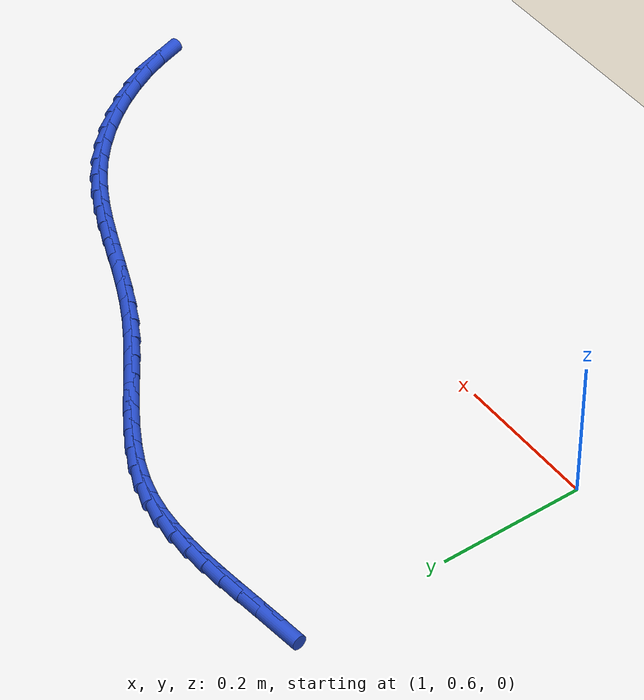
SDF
<sdf version="1.6">
 <world name="default">
  <model name="ground_plane">
   <static>1</static>
   <link name="link">
    <collision name="collision">
     <geometry><plane><normal>0 0 1</normal><size>100 100</size></plane></geometry>
     <surface><friction><ode><mu>100</mu><mu2>50</mu2></ode></friction></surface>
    </collision>
    <visual name="visual">
     <cast_shadows>0</cast_shadows>
     <geometry><plane><normal>0 0 1</normal><size>100 100</size></plane></geometry>
     <material>
      <script><uri>file://media/materials/scripts/gazebo.material</uri><name>Gazebo/WhiteGlow</name></script>
     </material>
    </visual>
   </link>
  </model>
  <model name="line">
   <link name="link_52">
    <pose>1.0295466909963629 1.0197453199006765 0.01 0 1.57 0.0985502799877787</pose>
    <collision name="collision">
     <geometry><cylinder><radius>0.01</radius><length>0.08</length></cylinder></geometry>
    </collision>
    <visual name="visual">
     <material>
      <script><name>Gazebo/Blue</name><uri>file://media/materials/scripts/gazebo.material</uri></script>
     </material>
     <geometry><cylinder><radius>0.01</radius><length>0.08</length></cylinder></geometry>
    </visual>
   </link>
   <link name="link_53">
    <pose>1.0619679361933965 1.022950826880873 0.01 0 1.57 0.10668664544577708</pose>
    <collision name="collision">
     <geometry><cylinder><radius>0.01</radius><length>0.08</length></cylinder></geometry>
    </collision>
    <visual name="visual">
     <material>
      <script><name>Gazebo/Blue</name><uri>file://media/materials/scripts/gazebo.material</uri></script>
     </material>
     <geometry><cylinder><radius>0.01</radius><length>0.08</length></cylinder></geometry>
    </visual>
   </link>
   <link name="link_54">
    <pose>1.0940946537646532 1.0263913820360195 0.01 0 1.57 0.10079699240235727</pose>
    <collision name="collision">
     <geometry><cylinder><radius>0.01</radius><length>0.08</length></cylinder></geometry>
    </collision>
    <visual name="visual">
     <material>
      <script><name>Gazebo/Blue</name><uri>file://media/materials/scripts/gazebo.material</uri></script>
     </material>
     <geometry><cylinder><radius>0.01</radius><length>0.08</length></cylinder></geometry>
    </visual>
   </link>
   <link name="link_55">
    <pose>1.125871012350304 1.0296052350754445 0.01 0 1.57 0.08033001967737259</pose>
    <collision name="collision">
     <geometry><cylinder><radius>0.01</radius><length>0.08</length></cylinder></geometry>
    </collision>
    <visual name="visual">
     <material>
      <script><name>Gazebo/Blue</name><uri>file://media/materials/scripts/gazebo.material</uri></script>
     </material>
     <geometry><cylinder><radius>0.01</radius><length>0.08</length></cylinder></geometry>
    </visual>
   </link>
   <link name="link_56">
    <pose>1.1572411805905212 1.0321306357084772 0.01 0 1.57 0.04446373219891118</pose>
    <collision name="collision">
     <geometry><cylinder><radius>0.01</radius><length>0.08</length></cylinder></geometry>
    </collision>
    <visual name="visual">
     <material>
      <script><name>Gazebo/Blue</name><uri>file://media/materials/scripts/gazebo.material</uri></script>
     </material>
     <geometry><cylinder><radius>0.01</radius><length>0.08</length></cylinder></geometry>
    </visual>
   </link>
   <link name="link_57">
    <pose>1.1881493271254748 1.0335058336444454 0.01 0 1.57 -0.007790324976418928</pose>
    <collision name="collision">
     <geometry><cylinder><radius>0.01</radius><length>0.08</length></cylinder></geometry>
    </collision>
    <visual name="visual">
     <material>
      <script><name>Gazebo/Blue</name><uri>file://media/materials/scripts/gazebo.material</uri></script>
     </material>
     <geometry><cylinder><radius>0.01</radius><length>0.08</length></cylinder></geometry>
    </visual>
   </link>
   <link name="link_58">
    <pose>1.2185396205953376 1.0332690785926784 0.01 0 1.57 -0.07733443137409492</pose>
    <collision name="collision">
     <geometry><cylinder><radius>0.01</radius><length>0.08</length></cylinder></geometry>
    </collision>
    <visual name="visual">
     <material>
      <script><name>Gazebo/Blue</name><uri>file://media/materials/scripts/gazebo.material</uri></script>
     </material>
     <geometry><cylinder><radius>0.01</radius><length>0.08</length></cylinder></geometry>
    </visual>
   </link>
   <link name="link_59">
    <pose>1.24835622964028 1.0309586202625043 0.01 0 1.57 -0.16452844738512007</pose>
    <collision name="collision">
     <geometry><cylinder><radius>0.01</radius><length>0.08</length></cylinder></geometry>
    </collision>
    <visual name="visual">
     <material>
      <script><name>Gazebo/Blue</name><uri>file://media/materials/scripts/gazebo.material</uri></script>
     </material>
     <geometry><cylinder><radius>0.01</radius><length>0.08</length></cylinder></geometry>
    </visual>
   </link>
   <link name="link_60">
    <pose>1.2775433229004738 1.0261127083632515 0.01 0 1.57 -0.267700751961531</pose>
    <collision name="collision">
     <geometry><cylinder><radius>0.01</radius><length>0.08</length></cylinder></geometry>
    </collision>
    <visual name="visual">
     <material>
      <script><name>Gazebo/Blue</name><uri>file://media/materials/scripts/gazebo.material</uri></script>
     </material>
     <geometry><cylinder><radius>0.01</radius><length>0.08</length></cylinder></geometry>
    </visual>
   </link>
   <link name="link_61">
    <pose>1.3060499091277775 1.0182937979865905 0.01 0 1.57 -0.3681553916015632</pose>
    <collision name="collision">
     <geometry><cylinder><radius>0.01</radius><length>0.08</length></cylinder></geometry>
    </collision>
    <visual name="visual">
     <material>
      <script><name>Gazebo/Blue</name><uri>file://media/materials/scripts/gazebo.material</uri></script>
     </material>
     <geometry><cylinder><radius>0.01</radius><length>0.08</length></cylinder></geometry>
    </visual>
   </link>
   <link name="link_62">
    <pose>1.3339206801874217 1.0075428551537553 0.01 0 1.57 -0.449506511914954</pose>
    <collision name="collision">
     <geometry><cylinder><radius>0.01</radius><length>0.08</length></cylinder></geometry>
    </collision>
    <visual name="visual">
     <material>
      <script><name>Gazebo/Blue</name><uri>file://media/materials/scripts/gazebo.material</uri></script>
     </material>
     <geometry><cylinder><radius>0.01</radius><length>0.08</length></cylinder></geometry>
    </visual>
   </link>
   <link name="link_63">
    <pose>1.3612880532535867 0.9943395598622773 0.01 0 1.57 -0.5116138458323856</pose>
    <collision name="collision">
     <geometry><cylinder><radius>0.01</radius><length>0.08</length></cylinder></geometry>
    </collision>
    <visual name="visual">
     <material>
      <script><name>Gazebo/Blue</name><uri>file://media/materials/scripts/gazebo.material</uri></script>
     </material>
     <geometry><cylinder><radius>0.01</radius><length>0.08</length></cylinder></geometry>
    </visual>
   </link>
   <link name="link_64">
    <pose>1.3882876902885875 0.9791798192842922 0.01 0 1.57 -0.5556536244174888</pose>
    <collision name="collision">
     <geometry><cylinder><radius>0.01</radius><length>0.08</length></cylinder></geometry>
    </collision>
    <visual name="visual">
     <material>
      <script><name>Gazebo/Blue</name><uri>file://media/materials/scripts/gazebo.material</uri></script>
     </material>
     <geometry><cylinder><radius>0.01</radius><length>0.08</length></cylinder></geometry>
    </visual>
   </link>
   <link name="link_65">
    <pose>1.4150552532547411 0.9625595405919359 0.01 0 1.57 -0.5829014485841069</pose>
    <collision name="collision">
     <geometry><cylinder><radius>0.01</radius><length>0.08</length></cylinder></geometry>
    </collision>
    <visual name="visual">
     <material>
      <script><name>Gazebo/Blue</name><uri>file://media/materials/scripts/gazebo.material</uri></script>
     </material>
     <geometry><cylinder><radius>0.01</radius><length>0.08</length></cylinder></geometry>
    </visual>
   </link>
   <link name="link_66">
    <pose>1.4417264041143634 0.9449746309573438 0.01 0 1.57 -0.5943695902177217</pose>
    <collision name="collision">
     <geometry><cylinder><radius>0.01</radius><length>0.08</length></cylinder></geometry>
    </collision>
    <visual name="visual">
     <material>
      <script><name>Gazebo/Blue</name><uri>file://media/materials/scripts/gazebo.material</uri></script>
     </material>
     <geometry><cylinder><radius>0.01</radius><length>0.08</length></cylinder></geometry>
    </visual>
   </link>
   <link name="link_67">
    <pose>1.46843680482977 0.9269209975526518 0.01 0 1.57 -0.5906478549886461</pose>
    <collision name="collision">
     <geometry><cylinder><radius>0.01</radius><length>0.08</length></cylinder></geometry>
    </collision>
    <visual name="visual">
     <material>
      <script><name>Gazebo/Blue</name><uri>file://media/materials/scripts/gazebo.material</uri></script>
     </material>
     <geometry><cylinder><radius>0.01</radius><length>0.08</length></cylinder></geometry>
    </visual>
   </link>
   <link name="link_68">
    <pose>1.4953221173632785 0.9088945475499962 0.01 0 1.57 -0.571865195946741</pose>
    <collision name="collision">
     <geometry><cylinder><radius>0.01</radius><length>0.08</length></cylinder></geometry>
    </collision>
    <visual name="visual">
     <material>
      <script><name>Gazebo/Blue</name><uri>file://media/materials/scripts/gazebo.material</uri></script>
     </material>
     <geometry><cylinder><radius>0.01</radius><length>0.08</length></cylinder></geometry>
    </visual>
   </link>
   <link name="link_69">
    <pose>1.5225180036772035 0.8913911881215115 0.01 0 1.57 -0.5377308793178665</pose>
    <collision name="collision">
     <geometry><cylinder><radius>0.01</radius><length>0.08</length></cylinder></geometry>
    </collision>
    <visual name="visual">
     <material>
      <script><name>Gazebo/Blue</name><uri>file://media/materials/scripts/gazebo.material</uri></script>
     </material>
     <geometry><cylinder><radius>0.01</radius><length>0.08</length></cylinder></geometry>
    </visual>
   </link>
   <link name="link_70">
    <pose>1.550160125733862 0.8749068264393347 0.01 0 1.57 -0.4888886992285748</pose>
    <collision name="collision">
     <geometry><cylinder><radius>0.01</radius><length>0.08</length></cylinder></geometry>
    </collision>
    <visual name="visual">
     <material>
      <script><name>Gazebo/Blue</name><uri>file://media/materials/scripts/gazebo.material</uri></script>
     </material>
     <geometry><cylinder><radius>0.01</radius><length>0.08</length></cylinder></geometry>
    </visual>
   </link>
   <link name="link_71">
    <pose>1.5783706556135721 0.8598999100109556 0.01 0 1.57 -0.4421092545885649</pose>
    <collision name="collision">
     <geometry><cylinder><radius>0.01</radius><length>0.08</length></cylinder></geometry>
    </collision>
    <visual name="visual">
     <material>
      <script><name>Gazebo/Blue</name><uri>file://media/materials/scripts/gazebo.material</uri></script>
     </material>
     <geometry><cylinder><radius>0.01</radius><length>0.08</length></cylinder></geometry>
    </visual>
   </link>
   <link name="link_72">
    <pose>1.6070842092671767 0.8463080671318283 0.01 0 1.57 -0.41030129178061026</pose>
    <collision name="collision">
     <geometry><cylinder><radius>0.01</radius><length>0.08</length></cylinder></geometry>
    </collision>
    <visual name="visual">
     <material>
      <script><name>Gazebo/Blue</name><uri>file://media/materials/scripts/gazebo.material</uri></script>
     </material>
     <geometry><cylinder><radius>0.01</radius><length>0.08</length></cylinder></geometry>
    </visual>
   </link>
   <link name="link_73">
    <pose>1.636097999177643 0.8336873743663606 0.01 0 1.57 -0.39402555693082025</pose>
    <collision name="collision">
     <geometry><cylinder><radius>0.01</radius><length>0.08</length></cylinder></geometry>
    </collision>
    <visual name="visual">
     <material>
      <script><name>Gazebo/Blue</name><uri>file://media/materials/scripts/gazebo.material</uri></script>
     </material>
     <geometry><cylinder><radius>0.01</radius><length>0.08</length></cylinder></geometry>
    </visual>
   </link>
   <link name="link_74">
    <pose>1.6652060838992189 0.8215851502251763 0.01 0 1.57 -0.3934559239815299</pose>
    <collision name="collision">
     <geometry><cylinder><radius>0.01</radius><length>0.08</length></cylinder></geometry>
    </collision>
    <visual name="visual">
     <material>
      <script><name>Gazebo/Blue</name><uri>file://media/materials/scripts/gazebo.material</uri></script>
     </material>
     <geometry><cylinder><radius>0.01</radius><length>0.08</length></cylinder></geometry>
    </visual>
   </link>
   <link name="link_75">
    <pose>1.694202521986154 0.8095487132188978 0.01 0 1.57 -0.4087853971269708</pose>
    <collision name="collision">
     <geometry><cylinder><radius>0.01</radius><length>0.08</length></cylinder></geometry>
    </collision>
    <visual name="visual">
     <material>
      <script><name>Gazebo/Blue</name><uri>file://media/materials/scripts/gazebo.material</uri></script>
     </material>
     <geometry><cylinder><radius>0.01</radius><length>0.08</length></cylinder></geometry>
    </visual>
   </link>
   <link name="link_76">
    <pose>1.7228813719926988 0.797125381858149 0.01 0 1.57 -0.44023054530474576</pose>
    <collision name="collision">
     <geometry><cylinder><radius>0.01</radius><length>0.08</length></cylinder></geometry>
    </collision>
    <visual name="visual">
     <material>
      <script><name>Gazebo/Blue</name><uri>file://media/materials/scripts/gazebo.material</uri></script>
     </material>
     <geometry><cylinder><radius>0.01</radius><length>0.08</length></cylinder></geometry>
    </visual>
   </link>
   <link name="link_77">
    <pose>1.7510366924731 0.7838624746535532 0.01 0 1.57 -0.4879124852618369</pose>
    <collision name="collision">
     <geometry><cylinder><radius>0.01</radius><length>0.08</length></cylinder></geometry>
    </collision>
    <visual name="visual">
     <material>
      <script><name>Gazebo/Blue</name><uri>file://media/materials/scripts/gazebo.material</uri></script>
     </material>
     <geometry><cylinder><radius>0.01</radius><length>0.08</length></cylinder></geometry>
    </visual>
   </link>
   <link name="link_78">
    <pose>1.7784625419816082 0.7693073101157335 0.01 0 1.57 -0.5516083225927558</pose>
    <collision name="collision">
     <geometry><cylinder><radius>0.01</radius><length>0.08</length></cylinder></geometry>
    </collision>
    <visual name="visual">
     <material>
      <script><name>Gazebo/Blue</name><uri>file://media/materials/scripts/gazebo.material</uri></script>
     </material>
     <geometry><cylinder><radius>0.01</radius><length>0.08</length></cylinder></geometry>
    </visual>
   </link>
   <link name="link_79">
    <pose>1.8049529790724723 0.7530072067553129 0.01 0 1.57 -0.6297407860938478</pose>
    <collision name="collision">
     <geometry><cylinder><radius>0.01</radius><length>0.08</length></cylinder></geometry>
    </collision>
    <visual name="visual">
     <material>
      <script><name>Gazebo/Blue</name><uri>file://media/materials/scripts/gazebo.material</uri></script>
     </material>
     <geometry><cylinder><radius>0.01</radius><length>0.08</length></cylinder></geometry>
    </visual>
   </link>
   <link name="link_80">
    <pose>1.8303031447447817 0.7345340900482956 0.01 0 1.57 -0.7113617040343441</pose>
    <collision name="collision">
     <geometry><cylinder><radius>0.01</radius><length>0.08</length></cylinder></geometry>
    </collision>
    <visual name="visual">
     <material>
      <script><name>Gazebo/Blue</name><uri>file://media/materials/scripts/gazebo.material</uri></script>
     </material>
     <geometry><cylinder><radius>0.01</radius><length>0.08</length></cylinder></geometry>
    </visual>
   </link>
   <link name="link_81">
    <pose>1.8543244669380998 0.7138301326788152 0.01 0 1.57 -0.7896009369477454</pose>
    <collision name="collision">
     <geometry><cylinder><radius>0.01</radius><length>0.08</length></cylinder></geometry>
    </collision>
    <visual name="visual">
     <material>
      <script><name>Gazebo/Blue</name><uri>file://media/materials/scripts/gazebo.material</uri></script>
     </material>
     <geometry><cylinder><radius>0.01</radius><length>0.08</length></cylinder></geometry>
    </visual>
   </link>
   <link name="link_82">
    <pose>1.8768409576859373 0.6911235785952462 0.01 0 1.57 -0.865507322533157</pose>
    <collision name="collision">
     <geometry><cylinder><radius>0.01</radius><length>0.08</length></cylinder></geometry>
    </collision>
    <visual name="visual">
     <material>
      <script><name>Gazebo/Blue</name><uri>file://media/materials/scripts/gazebo.material</uri></script>
     </material>
     <geometry><cylinder><radius>0.01</radius><length>0.08</length></cylinder></geometry>
    </visual>
   </link>
   <link name="link_83">
    <pose>1.8976769554184512 0.6666500916445659 0.01 0 1.57 -0.940309605896096</pose>
    <collision name="collision">
     <geometry><cylinder><radius>0.01</radius><length>0.08</length></cylinder></geometry>
    </collision>
    <visual name="visual">
     <material>
      <script><name>Gazebo/Blue</name><uri>file://media/materials/scripts/gazebo.material</uri></script>
     </material>
     <geometry><cylinder><radius>0.01</radius><length>0.08</length></cylinder></geometry>
    </visual>
   </link>
   <link name="link_84">
    <pose>1.9166567985657992 0.6406453356737518 0.01 0 1.57 -1.015223922532161</pose>
    <collision name="collision">
     <geometry><cylinder><radius>0.01</radius><length>0.08</length></cylinder></geometry>
    </collision>
    <visual name="visual">
     <material>
      <script><name>Gazebo/Blue</name><uri>file://media/materials/scripts/gazebo.material</uri></script>
     </material>
     <geometry><cylinder><radius>0.01</radius><length>0.08</length></cylinder></geometry>
    </visual>
   </link>
   <link name="link_85">
    <pose>1.9336048255581386 0.61334497452978 0.01 0 1.57 -1.0914660131109797</pose>
    <collision name="collision">
     <geometry><cylinder><radius>0.01</radius><length>0.08</length></cylinder></geometry>
    </collision>
    <visual name="visual">
     <material>
      <script><name>Gazebo/Blue</name><uri>file://media/materials/scripts/gazebo.material</uri></script>
     </material>
     <geometry><cylinder><radius>0.01</radius><length>0.08</length></cylinder></geometry>
    </visual>
   </link>
   <link name="link_86">
    <pose>1.9483453748256259 0.5849846720596282 0.01 0 1.57 -1.1702625314178252</pose>
    <collision name="collision">
     <geometry><cylinder><radius>0.01</radius><length>0.08</length></cylinder></geometry>
    </collision>
    <visual name="visual">
     <material>
      <script><name>Gazebo/Blue</name><uri>file://media/materials/scripts/gazebo.material</uri></script>
     </material>
     <geometry><cylinder><radius>0.01</radius><length>0.08</length></cylinder></geometry>
    </visual>
   </link>
   <link name="link_87">
    <pose>1.9607027847984186 0.5558000921102735 0.01 0 1.57 -1.252838558718122</pose>
    <collision name="collision">
     <geometry><cylinder><radius>0.01</radius><length>0.08</length></cylinder></geometry>
    </collision>
    <visual name="visual">
     <material>
      <script><name>Gazebo/Blue</name><uri>file://media/materials/scripts/gazebo.material</uri></script>
     </material>
     <geometry><cylinder><radius>0.01</radius><length>0.08</length></cylinder></geometry>
    </visual>
   </link>
  </model>
 </world>
</sdf>
